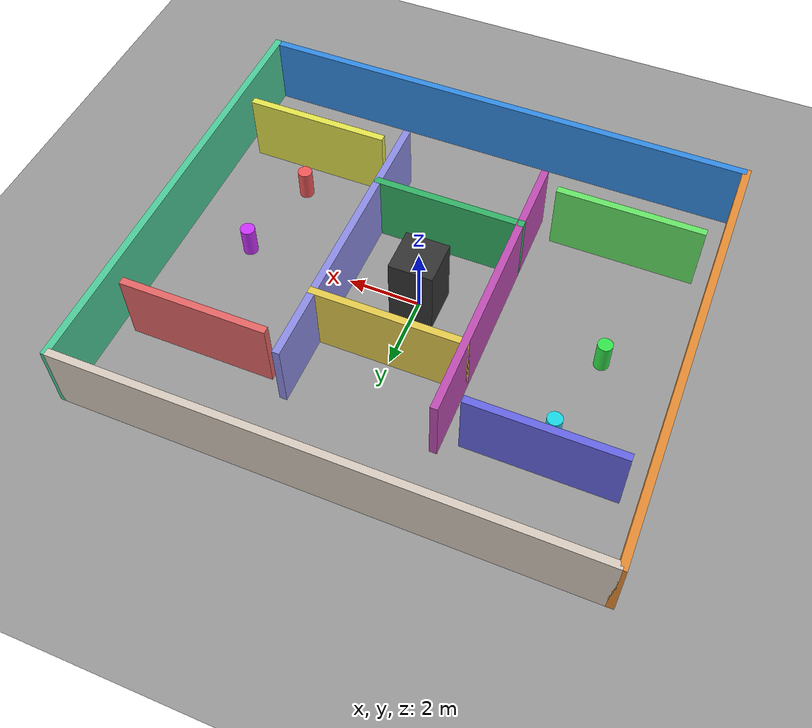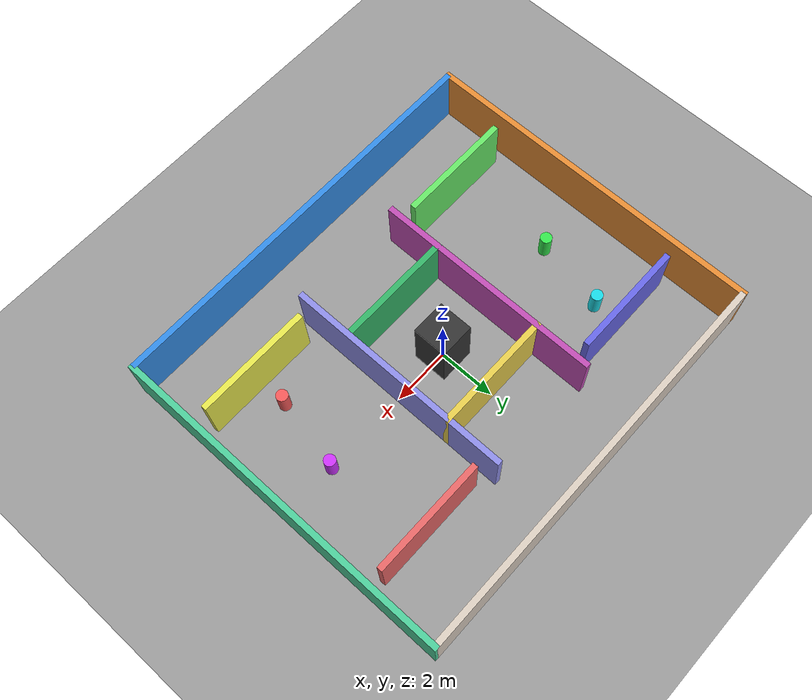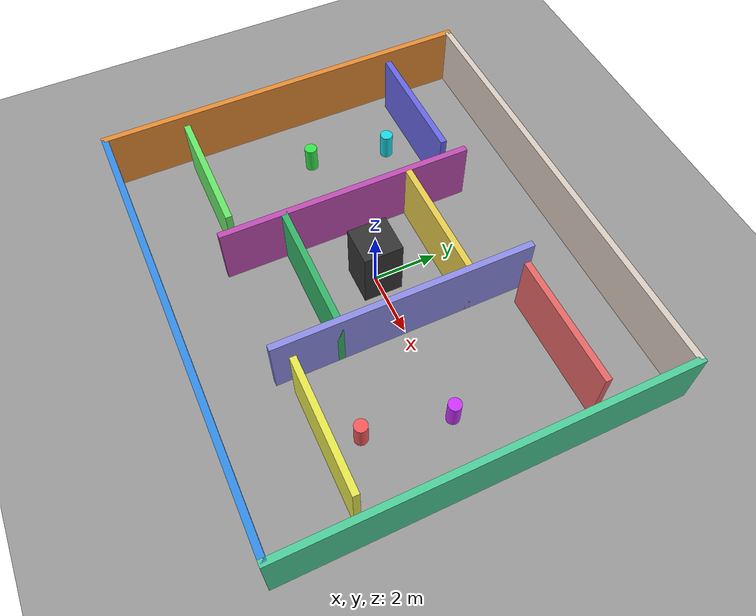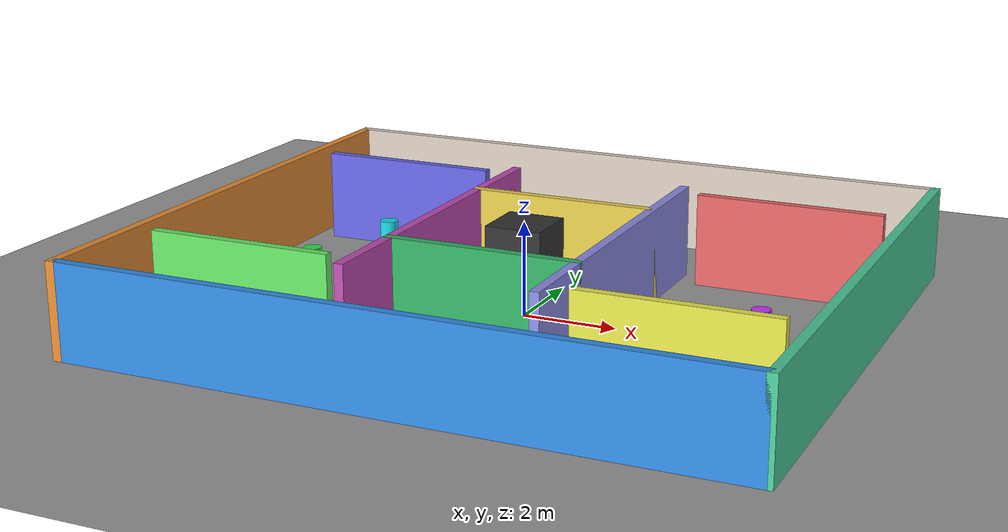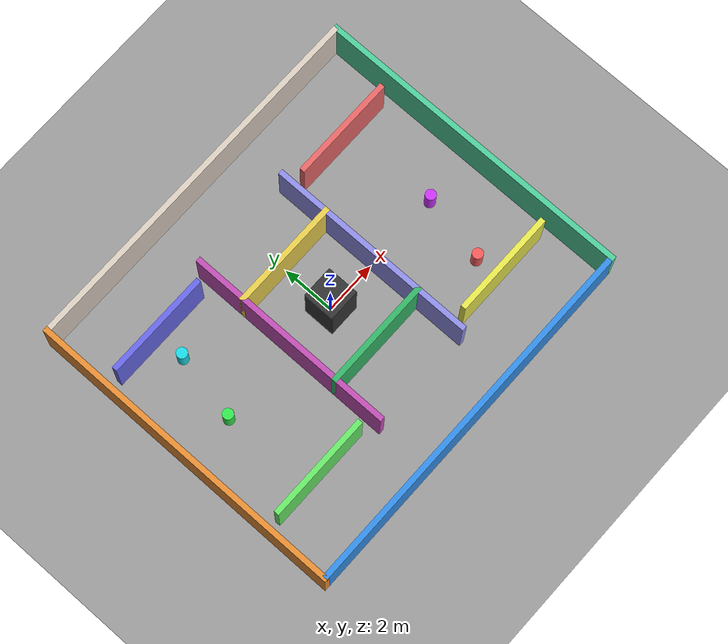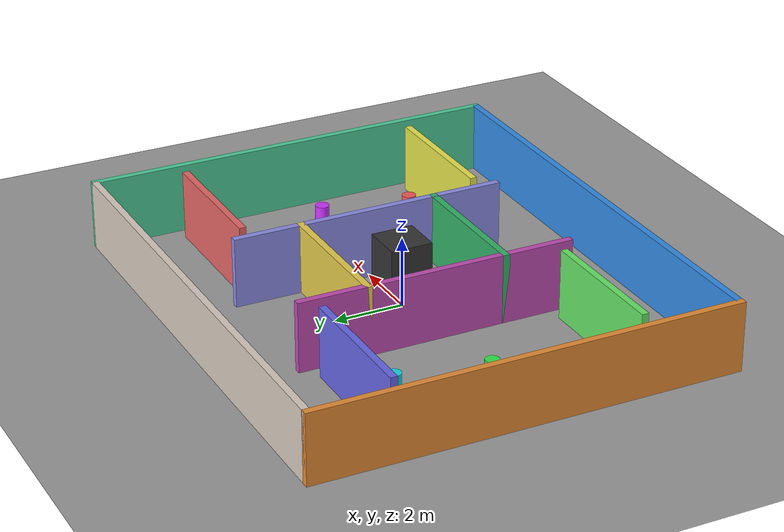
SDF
<?xml version="1.0" ?>
<sdf version="1.6">
  <world name="custom_map">
    <light name="sun" type="directional">
      <pose>0 0 10 0 0 0</pose>
      <diffuse>1 1 1 1</diffuse>
      <specular>0.2 0.2 0.2 1</specular>
      <direction>-0.5 0.1 -1</direction>
    </light>

    <model name="ground_plane">
      <static>true</static>
      <link name="link">
        <collision name="collision">
          <geometry>
            <plane>
              <normal>0 0 1</normal>
              <size>60 60</size>
            </plane>
          </geometry>
        </collision>
        <visual name="visual">
          <geometry>
            <plane>
              <normal>0 0 1</normal>
              <size>60 60</size>
            </plane>
          </geometry>
          <material>
            <ambient>0.6 0.6 0.6 1</ambient>
            <diffuse>0.6 0.6 0.6 1</diffuse>
            <specular>0.1 0.1 0.1 1</specular>
          </material>
        </visual>
      </link>
    </model>

    <!-- Outer walls -->
    <model name="wall_north">
      <static>true</static>
      <link name="link">
        <pose>0 6 1 0 0 0</pose>
        <collision name="collision">
          <geometry>
            <box>
              <size>14 0.2 2</size>
            </box>
          </geometry>
        </collision>
        <visual name="visual">
          <geometry>
            <box>
              <size>14 0.2 2</size>
            </box>
          </geometry>
          <material>
              <ambient>0.85 0.8 0.75 1</ambient>
              <diffuse>0.85 0.8 0.75 1</diffuse>
              <specular>0.1 0.1 0.1 1</specular>
          </material>
        </visual>
      </link>
    </model>

    <model name="wall_south">
      <static>true</static>
      <link name="link">
        <pose>0 -6 1 0 0 0</pose>
        <collision name="collision">
          <geometry>
            <box>
              <size>14 0.2 2</size>
            </box>
          </geometry>
        </collision>
        <visual name="visual">
          <geometry>
            <box>
              <size>14 0.2 2</size>
            </box>
          </geometry>
          <material>
              <ambient>0.2 0.55 0.9 1</ambient>
              <diffuse>0.2 0.55 0.9 1</diffuse>
              <specular>0.1 0.1 0.1 1</specular>
          </material>
        </visual>
      </link>
    </model>

    <model name="wall_west">
      <static>true</static>
      <link name="link">
        <pose>-7 0 1 0 0 0</pose>
        <collision name="collision">
          <geometry>
            <box>
              <size>0.2 12.2 2</size>
            </box>
          </geometry>
        </collision>
        <visual name="visual">
          <geometry>
            <box>
              <size>0.2 12.2 2</size>
            </box>
          </geometry>
          <material>
              <ambient>0.9 0.55 0.2 1</ambient>
              <diffuse>0.9 0.55 0.2 1</diffuse>
              <specular>0.1 0.1 0.1 1</specular>
          </material>
        </visual>
      </link>
    </model>

    <model name="wall_east">
      <static>true</static>
      <link name="link">
        <pose>7 0 1 0 0 0</pose>
        <collision name="collision">
          <geometry>
            <box>
              <size>0.2 12.2 2</size>
            </box>
          </geometry>
        </collision>
        <visual name="visual">
          <geometry>
            <box>
              <size>0.2 12.2 2</size>
            </box>
          </geometry>
          <material>
              <ambient>0.3 0.8 0.6 1</ambient>
              <diffuse>0.3 0.8 0.6 1</diffuse>
              <specular>0.1 0.1 0.1 1</specular>
          </material>
        </visual>
      </link>
    </model>

    <!-- Interior walls to create rooms and corridor -->
    <model name="wall_mid_1">
      <static>true</static>
      <link name="link">
        <pose>-2 0 1 0 0 0</pose>
        <collision name="collision">
          <geometry>
            <box>
              <size>0.2 8 2</size>
            </box>
          </geometry>
        </collision>
        <visual name="visual">
          <geometry>
            <box>
              <size>0.2 8 2</size>
            </box>
          </geometry>
          <material>
              <ambient>0.75 0.3 0.7 1</ambient>
              <diffuse>0.75 0.3 0.7 1</diffuse>
              <specular>0.1 0.1 0.1 1</specular>
          </material>
        </visual>
      </link>
    </model>

    <model name="wall_mid_2">
      <static>true</static>
      <link name="link">
        <pose>2 0 1 0 0 0</pose>
        <collision name="collision">
          <geometry>
            <box>
              <size>0.2 8 2</size>
            </box>
          </geometry>
        </collision>
        <visual name="visual">
          <geometry>
            <box>
              <size>0.2 8 2</size>
            </box>
          </geometry>
          <material>
              <ambient>0.55 0.55 0.9 1</ambient>
              <diffuse>0.55 0.55 0.9 1</diffuse>
              <specular>0.1 0.1 0.1 1</specular>
          </material>
        </visual>
      </link>
    </model>

    <model name="wall_mid_3">
      <static>true</static>
      <link name="link">
        <pose>0 2 1 0 0 0</pose>
        <collision name="collision">
          <geometry>
            <box>
              <size>4.2 0.2 2</size>
            </box>
          </geometry>
        </collision>
        <visual name="visual">
          <geometry>
            <box>
              <size>4.2 0.2 2</size>
            </box>
          </geometry>
          <material>
              <ambient>0.9 0.8 0.3 1</ambient>
              <diffuse>0.9 0.8 0.3 1</diffuse>
              <specular>0.1 0.1 0.1 1</specular>
          </material>
        </visual>
      </link>
    </model>

    <model name="wall_mid_4">
      <static>true</static>
      <link name="link">
        <pose>0 -2 1 0 0 0</pose>
        <collision name="collision">
          <geometry>
            <box>
              <size>4.2 0.2 2</size>
            </box>
          </geometry>
        </collision>
        <visual name="visual">
          <geometry>
            <box>
              <size>4.2 0.2 2</size>
            </box>
          </geometry>
          <material>
              <ambient>0.2 0.7 0.4 1</ambient>
              <diffuse>0.2 0.7 0.4 1</diffuse>
              <specular>0.1 0.1 0.1 1</specular>
          </material>
        </visual>
      </link>
    </model>

    <!-- Additional walls to make the map more complex -->
    <model name="wall_nw_room">
      <static>true</static>
      <link name="link">
        <pose>-4.5 3.5 1 0 0 0</pose>
        <collision name="collision">
          <geometry>
            <box>
              <size>4 0.2 2</size>
            </box>
          </geometry>
        </collision>
        <visual name="visual">
          <geometry>
            <box>
              <size>4 0.2 2</size>
            </box>
          </geometry>
          <material>
            <ambient>0.4 0.4 0.9 1</ambient>
            <diffuse>0.4 0.4 0.9 1</diffuse>
            <specular>0.1 0.1 0.1 1</specular>
          </material>
        </visual>
      </link>
    </model>

    <model name="wall_ne_room">
      <static>true</static>
      <link name="link">
        <pose>4.5 3.5 1 0 0 0</pose>
        <collision name="collision">
          <geometry>
            <box>
              <size>4 0.2 2</size>
            </box>
          </geometry>
        </collision>
        <visual name="visual">
          <geometry>
            <box>
              <size>4 0.2 2</size>
            </box>
          </geometry>
          <material>
            <ambient>0.9 0.4 0.4 1</ambient>
            <diffuse>0.9 0.4 0.4 1</diffuse>
            <specular>0.1 0.1 0.1 1</specular>
          </material>
        </visual>
      </link>
    </model>

    <model name="wall_sw_room">
      <static>true</static>
      <link name="link">
        <pose>-4.5 -3.5 1 0 0 0</pose>
        <collision name="collision">
          <geometry>
            <box>
              <size>4 0.2 2</size>
            </box>
          </geometry>
        </collision>
        <visual name="visual">
          <geometry>
            <box>
              <size>4 0.2 2</size>
            </box>
          </geometry>
          <material>
            <ambient>0.4 0.9 0.4 1</ambient>
            <diffuse>0.4 0.9 0.4 1</diffuse>
            <specular>0.1 0.1 0.1 1</specular>
          </material>
        </visual>
      </link>
    </model>

    <model name="wall_se_room">
      <static>true</static>
      <link name="link">
        <pose>4.5 -3.5 1 0 0 0</pose>
        <collision name="collision">
          <geometry>
            <box>
              <size>4 0.2 2</size>
            </box>
          </geometry>
        </collision>
        <visual name="visual">
          <geometry>
            <box>
              <size>4 0.2 2</size>
            </box>
          </geometry>
          <material>
            <ambient>0.9 0.9 0.3 1</ambient>
            <diffuse>0.9 0.9 0.3 1</diffuse>
            <specular>0.1 0.1 0.1 1</specular>
          </material>
        </visual>
      </link>
    </model>

    <model name="wall_center_block">
      <static>true</static>
      <link name="link">
        <pose>0 0 1 0 0 0</pose>
        <collision name="collision">
          <geometry>
            <box>
              <size>1.2 1.2 2</size>
            </box>
          </geometry>
        </collision>
        <visual name="visual">
          <geometry>
            <box>
              <size>1.2 1.2 2</size>
            </box>
          </geometry>
          <material>
            <ambient>0.2 0.2 0.2 1</ambient>
            <diffuse>0.2 0.2 0.2 1</diffuse>
            <specular>0.05 0.05 0.05 1</specular>
          </material>
        </visual>
      </link>
    </model>

    <!-- Static humans -->
    <model name="human_static_1">
      <static>true</static>
      <pose>-4.5 2.5 0 0 0 0</pose>
      <link name="link">
        <collision name="collision">
          <geometry>
            <cylinder>
              <radius>0.2</radius>
              <length>1.7</length>
            </cylinder>
          </geometry>
        </collision>
        <visual name="visual">
          <geometry>
            <cylinder>
              <radius>0.2</radius>
              <length>1.7</length>
            </cylinder>
          </geometry>
          <material>
              <ambient>0.1 0.85 0.9 1</ambient>
              <diffuse>0.1 0.85 0.9 1</diffuse>
              <specular>0.2 0.2 0.2 1</specular>
          </material>
        </visual>
      </link>
    </model>

    <model name="human_static_2">
      <static>true</static>
      <pose>4.5 -2.5 0 0 0 0</pose>
      <link name="link">
        <collision name="collision">
          <geometry>
            <cylinder>
              <radius>0.2</radius>
              <length>1.7</length>
            </cylinder>
          </geometry>
        </collision>
        <visual name="visual">
          <geometry>
            <cylinder>
              <radius>0.2</radius>
              <length>1.7</length>
            </cylinder>
          </geometry>
          <material>
              <ambient>0.95 0.35 0.35 1</ambient>
              <diffuse>0.95 0.35 0.35 1</diffuse>
              <specular>0.2 0.2 0.2 1</specular>
          </material>
        </visual>
      </link>
    </model>

    <!-- Moving humans (moved via ROS script) -->
    <model name="human_moving_1">
      <static>false</static>
      <pose>-5.0 0.0 0 0 0 0</pose>
      <link name="link">
        <inertial>
          <mass>60.0</mass>
          <inertia>
            <ixx>1</ixx>
            <iyy>1</iyy>
            <izz>1</izz>
          </inertia>
        </inertial>
        <collision name="collision">
          <geometry>
            <cylinder>
              <radius>0.2</radius>
              <length>1.7</length>
            </cylinder>
          </geometry>
        </collision>
        <visual name="visual">
          <geometry>
            <cylinder>
              <radius>0.2</radius>
              <length>1.7</length>
            </cylinder>
          </geometry>
          <material>
              <ambient>0.2 0.9 0.3 1</ambient>
              <diffuse>0.2 0.9 0.3 1</diffuse>
              <specular>0.2 0.2 0.2 1</specular>
          </material>
        </visual>
      </link>
    </model>

    <model name="human_moving_2">
      <static>false</static>
      <pose>5.0 0.0 0 0 0 0</pose>
      <link name="link">
        <inertial>
          <mass>60.0</mass>
          <inertia>
            <ixx>1</ixx>
            <iyy>1</iyy>
            <izz>1</izz>
          </inertia>
        </inertial>
        <collision name="collision">
          <geometry>
            <cylinder>
              <radius>0.2</radius>
              <length>1.7</length>
            </cylinder>
          </geometry>
        </collision>
        <visual name="visual">
          <geometry>
            <cylinder>
              <radius>0.2</radius>
              <length>1.7</length>
            </cylinder>
          </geometry>
          <material>
              <ambient>0.8 0.2 1.0 1</ambient>
              <diffuse>0.8 0.2 1.0 1</diffuse>
              <specular>0.2 0.2 0.2 1</specular>
          </material>
        </visual>
      </link>
    </model>
  </world>
</sdf>
